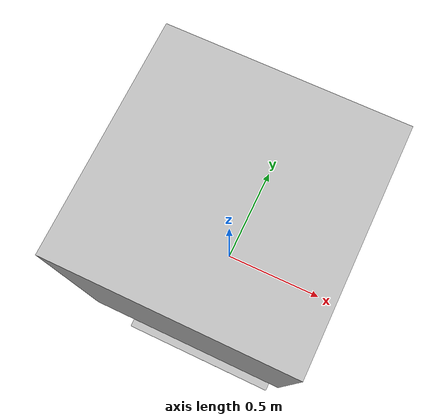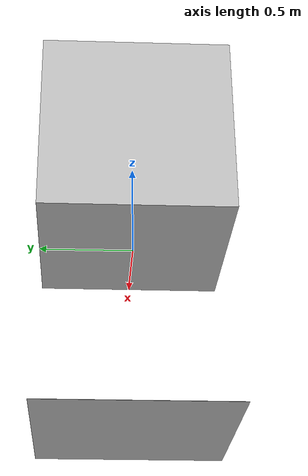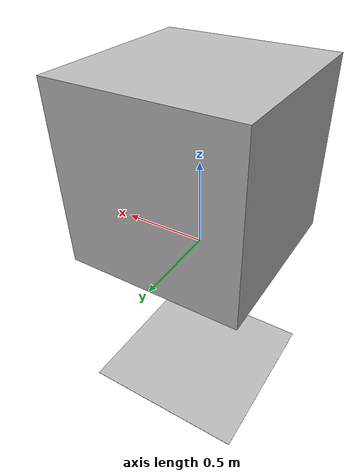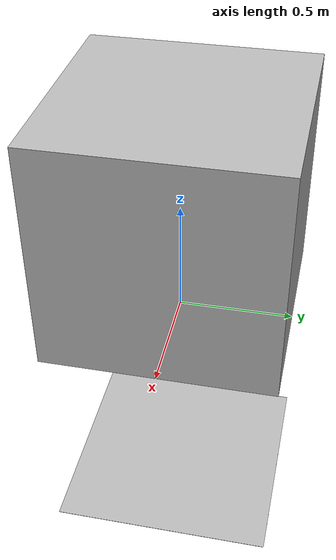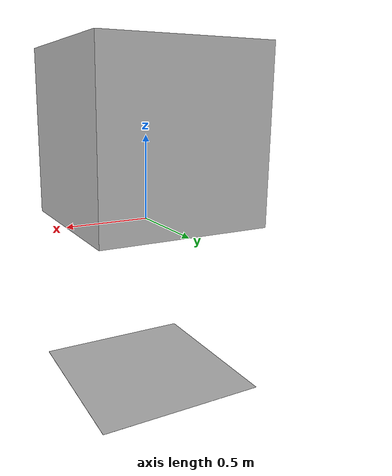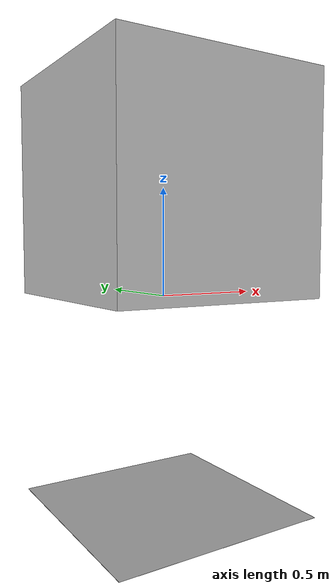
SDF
<?xml version="1.0"?>
<sdf version="1.7">
  <model name="block_on_halfspace">
    <!-- A link to model the ground. Inertia values are not particularly
         important since the ground does not move. -->
    <link name="ground">
      <pose>0 0 -1 0 0 0</pose>
      <inertial>
        <mass>1.0</mass>
        <inertia>
          <ixx>1.0</ixx>
          <ixy>0</ixy>
          <ixz>0</ixz>
          <iyy>1.0</iyy>
          <iyz>0</iyz>
          <izz>1.0</izz>
        </inertia>
      </inertial>
      <visual name="visual">
        <geometry>
          <plane>
            <normal>0.0 0.0 1.0</normal>
          </plane>
        </geometry>
      </visual>
      <collision name="ground-collision">
        <geometry>
          <box>
            <size>10.0 10.0 0.1</size>
          </box>
        </geometry>
      </collision>
    </link>
    <!-- The model for a solid, unit cube of uniform density. -->
    <link name="box">
      <pose>0 0 0.5 0 0 0</pose>
      <inertial>
        <mass>1.0</mass>
        <inertia>
          <ixx>0.166666666666667</ixx>
          <ixy>0</ixy>
          <ixz>0</ixz>
          <iyy>0.166666666666667</iyy>
          <iyz>0</iyz>
          <izz>0.166666666666667</izz>
        </inertia>
      </inertial>
      <visual name="visual">
        <geometry>
          <box>
            <size>1.0 1.0 1.0</size>
          </box>
        </geometry>
      </visual>
      <collision name="box-collision">
        <geometry>
          <box>
            <size>1.0 1.0 1.0</size>
          </box>
        </geometry>
      </collision>
    </link>
  </model>
</sdf>
